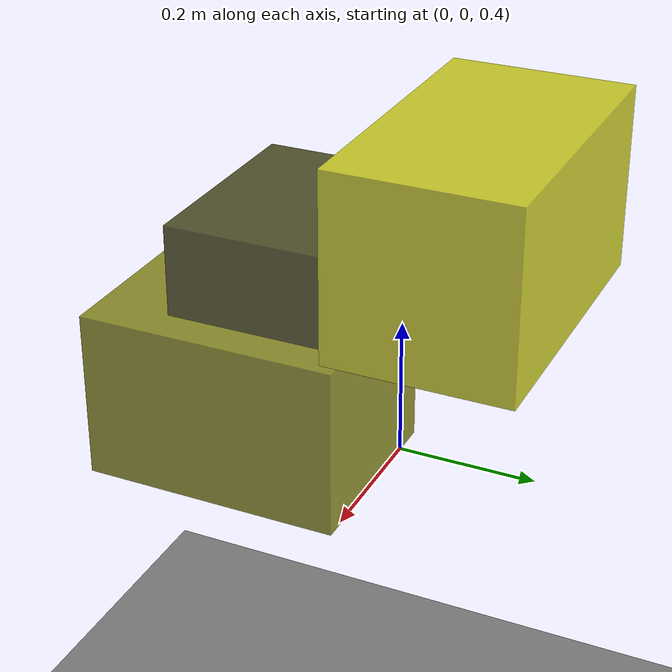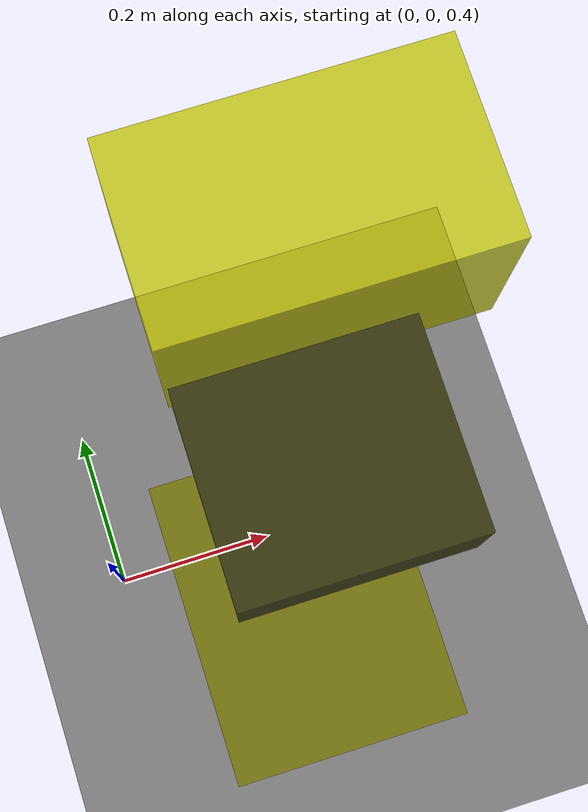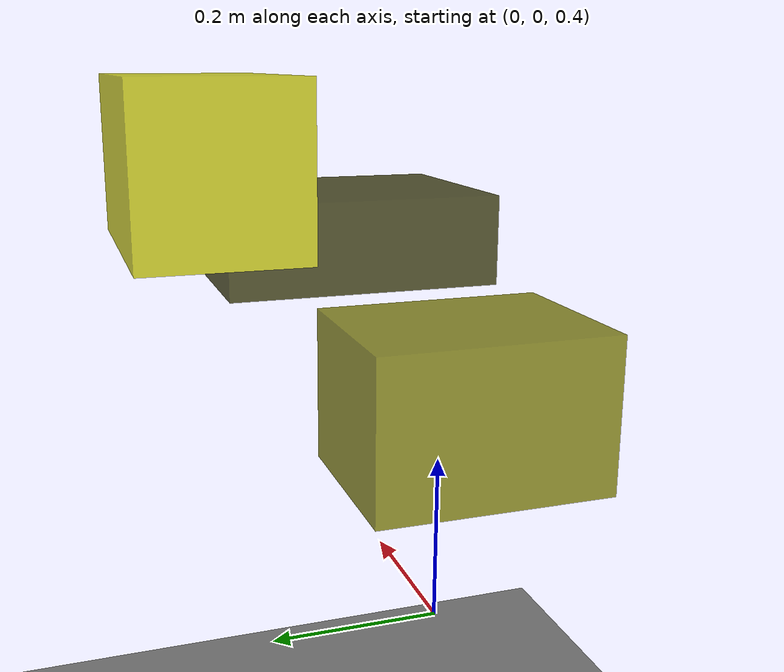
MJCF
<?xml version="1.0"?>
<mujoco model="obstacle_scene">
  <compiler angle="radian" coordinate="local"/>
  <option timestep="0.001" gravity="0 0 -9.81"/>

  <asset>
    <material name="obstacle_mat" rgba="0.8 0.8 0.0 0.8"/>
    <material name="ground_mat" rgba="0.5 0.5 0.5 1"/>
  </asset>

  <worldbody>
    <!-- Ground plane -->
    <geom name="ground" type="plane" size="3 3 0.1" material="ground_mat"/>

    <!-- Obstacles -->
    <body name="obstacle_0" pos="0.259641 0.043761 0.829873">
      <geom name="obs_0" type="box" size="0.133436 0.171363 0.056494" rgba="0.2 0.2 0.0 0.8"/>
    </body>
    <body name="obstacle_1" pos="0.204539 -0.120162 0.594322">
      <geom name="obs_1" type="box" size="0.130488 0.170913 0.112660" rgba="0.5 0.5 0.0 0.8"/>
    </body>
    <body name="obstacle_2" pos="0.303524 0.216572 0.921336">
      <geom name="obs_2" type="box" size="0.181422 0.107952 0.110331" rgba="0.8 0.8 0.0 0.8"/>
    </body>
  </worldbody>
</mujoco>
